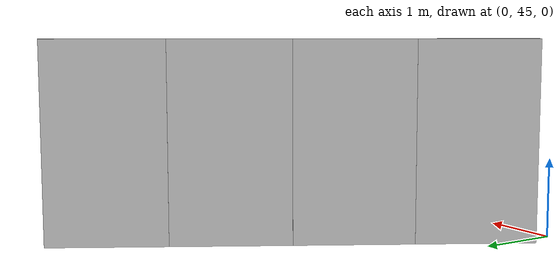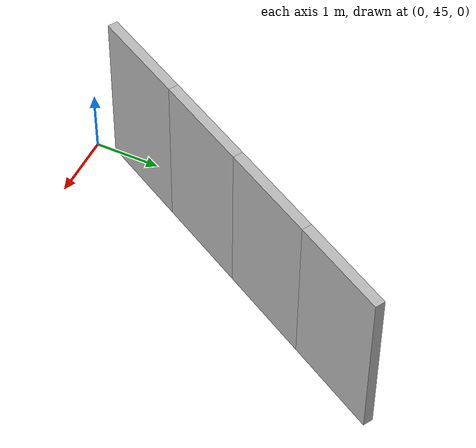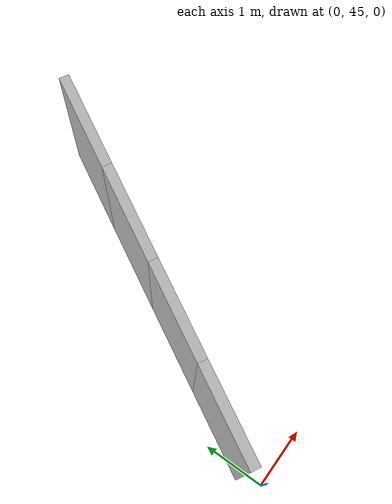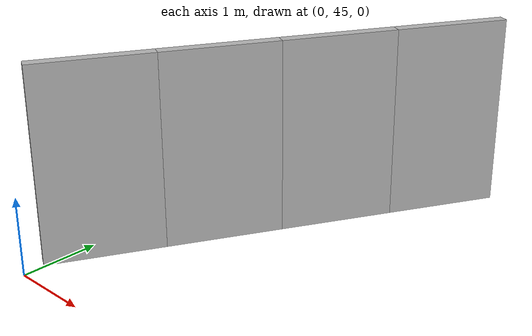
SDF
<?xml version="1.0" ?>
<sdf version="1.6">
  <model name="sps_0534">
    <pose frame="">0 0 0 0 -0 0</pose>
    <static>1</static>
    <self_collide>0</self_collide>
    <allow_auto_disable>0</allow_auto_disable>
    <link name="Wall4889">
      <kinematic>0</kinematic>
      <gravity>1</gravity>
      <self_collide>0</self_collide>
      <collision name="collision">
        <geometry>
          <box>
            <size>1.49626 0.15 2.5</size>
          </box>
        </geometry>
        <pose frame="">0 0 0 0 -0 0</pose>
      </collision>
      <visual name="visual">
        <geometry>
          <box>
            <size>1.49626 0.15 2.5</size>
          </box>
        </geometry>
        <pose frame="">0 0 0 0 -0 0</pose>
        <cast_shadows>1</cast_shadows>
        <transparency>0.0</transparency>
      </visual>
      <pose frame="">2.42767 49.9119 1.25 0 0 -2.0762</pose>
    </link>
    <link name="Wall4890">
      <kinematic>0</kinematic>
      <gravity>1</gravity>
      <self_collide>0</self_collide>
      <collision name="collision">
        <geometry>
          <box>
            <size>1.49672 0.15 2.5</size>
          </box>
        </geometry>
        <pose frame="">0 0 0 0 -0 0</pose>
      </collision>
      <visual name="visual">
        <geometry>
          <box>
            <size>1.49672 0.15 2.5</size>
          </box>
        </geometry>
        <pose frame="">0 0 0 0 -0 0</pose>
        <cast_shadows>1</cast_shadows>
        <transparency>0.0</transparency>
      </visual>
      <pose frame="">1.70437 48.6018 1.25 0 0 -2.0743</pose>
    </link>
    <link name="Wall4891">
      <kinematic>0</kinematic>
      <gravity>1</gravity>
      <self_collide>0</self_collide>
      <collision name="collision">
        <geometry>
          <box>
            <size>1.49653 0.15 2.5</size>
          </box>
        </geometry>
        <pose frame="">0 0 0 0 -0 0</pose>
      </collision>
      <visual name="visual">
        <geometry>
          <box>
            <size>1.49653 0.15 2.5</size>
          </box>
        </geometry>
        <pose frame="">0 0 0 0 -0 0</pose>
        <cast_shadows>1</cast_shadows>
        <transparency>0.0</transparency>
      </visual>
      <pose frame="">0.983177 47.2904 1.25 0 0 -2.07288</pose>
    </link>
    <link name="Wall4892">
      <kinematic>0</kinematic>
      <gravity>1</gravity>
      <self_collide>0</self_collide>
      <collision name="collision">
        <geometry>
          <box>
            <size>1.49649 0.15 2.5</size>
          </box>
        </geometry>
        <pose frame="">0 0 0 0 -0 0</pose>
      </collision>
      <visual name="visual">
        <geometry>
          <box>
            <size>1.49649 0.15 2.5</size>
          </box>
        </geometry>
        <pose frame="">0 0 0 0 -0 0</pose>
        <cast_shadows>1</cast_shadows>
        <transparency>0.0</transparency>
      </visual>
      <pose frame="">0.26406 45.978 1.25 0 0 -2.07122</pose>
    </link>
  </model>
</sdf>
